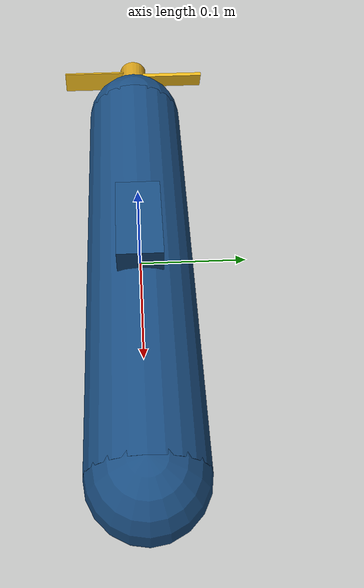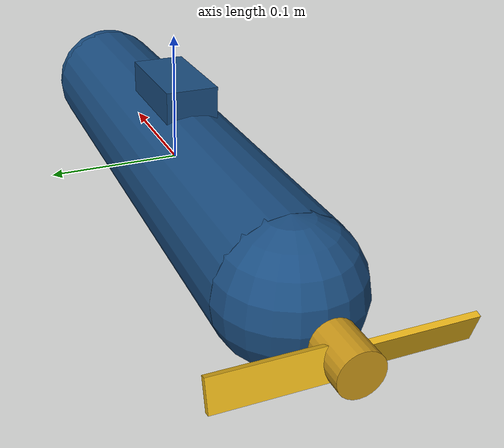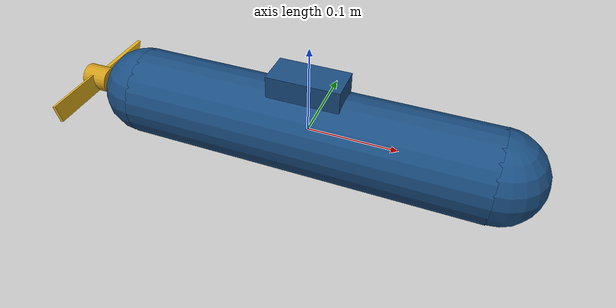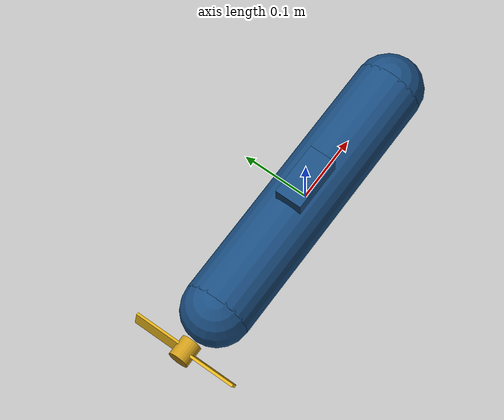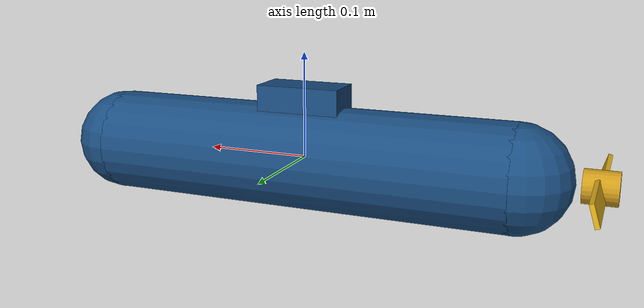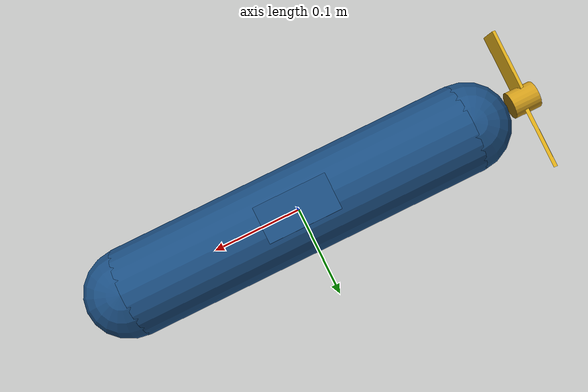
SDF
<?xml version="1.0" ?>
<sdf version="1.6">
  <world name="world">
    <model name="submarine">
      <pose>0 0 0 0 0 0</pose>

      <!-- Main hull body. A separate fixed ballast link below the hull lowers
           the overall centre of gravity while keeping the displaced volume
           unchanged. -->
      <link name="base_link">
        <pose>0 0 0 0 0 0</pose>
        <inertial>
          <pose>0 0 0 0 0 0</pose>
          <mass>1.341592653589793</mass>
          <inertia>
            <ixx>0.0016769908169872413</ixx>
            <ixy>0</ixy>
            <ixz>0</ixz>
            <iyy>0.018732647456357533</iyy>
            <iyz>0</iyz>
            <izz>0.018732647456357533</izz>
          </inertia>
        </inertial>
        <collision name="base_link_collision">
          <pose>0 0 0 0 1.5707963267948966 0</pose>
          <geometry>
            <cylinder>
              <radius>0.05</radius>
              <length>0.4</length>
            </cylinder>
          </geometry>
        </collision>
        <collision name="conning_tower_collision">
          <pose>0 0 0.05 0 0 0</pose>
          <geometry>
            <box>
              <size>0.08 0.04 0.04</size>
            </box>
          </geometry>
        </collision>
        <visual name="base_link_visual">
          <pose>0 0 0 0 1.5707963267948966 0</pose>
          <geometry>
            <cylinder>
              <radius>0.05</radius>
              <length>0.4</length>
            </cylinder>
          </geometry>
          <material>
            <ambient>0.1 0.3 0.5 1</ambient>
            <diffuse>0.1 0.3 0.5 1</diffuse>
            <specular>0.4 0.4 0.4 1</specular>
            <emissive>0 0 0 1</emissive>
          </material>
        </visual>
        <visual name="conning_tower_visual">
          <pose>0 0 0.05 0 0 0</pose>
          <geometry>
            <box>
              <size>0.08 0.04 0.04</size>
            </box>
          </geometry>
          <material>
            <ambient>0.1 0.3 0.5 1</ambient>
            <diffuse>0.1 0.3 0.5 1</diffuse>
            <specular>0.4 0.4 0.4 1</specular>
            <emissive>0 0 0 1</emissive>
          </material>
        </visual>
        <visual name="nose_visual">
          <pose>0.2 0 0 0 0 0</pose>
          <geometry>
            <sphere>
              <radius>0.05</radius>
            </sphere>
          </geometry>
          <material>
            <ambient>0.1 0.3 0.5 1</ambient>
            <diffuse>0.1 0.3 0.5 1</diffuse>
            <specular>0.4 0.4 0.4 1</specular>
            <emissive>0 0 0 1</emissive>
          </material>
        </visual>
        <visual name="tail_visual">
          <pose>-0.2 0 0 0 0 0</pose>
          <geometry>
            <sphere>
              <radius>0.05</radius>
            </sphere>
          </geometry>
          <material>
            <ambient>0.1 0.3 0.5 1</ambient>
            <diffuse>0.1 0.3 0.5 1</diffuse>
            <specular>0.4 0.4 0.4 1</specular>
            <emissive>0 0 0 1</emissive>
          </material>
        </visual>
      </link>

      <link name="ballast_keel">
        <pose>0 0 -0.09 0 0 0</pose>
        <inertial>
          <pose>0 0 0 0 0 0</pose>
          <!-- Compact ballast block, approximated as a 0.12 x 0.03 x 0.02 m
               solid box of mass 1.8 kg. -->
          <mass>1.8</mass>
          <inertia>
            <ixx>0.000195</ixx>
            <ixy>0</ixy>
            <ixz>0</ixz>
            <iyy>0.00222</iyy>
            <iyz>0</iyz>
            <izz>0.002295</izz>
          </inertia>
        </inertial>
      </link>

      <!-- Propeller hub -->
      <link name="propeller_hub">
        <pose>-0.27 0 0 0 0 0</pose>
        <inertial>
          <pose>0 0 0 0 0 0</pose>
          <mass>0.021205750411731104</mass>
          <inertia>
            <ixx>2.385646921319749e-06</ixx>
            <ixy>0</ixy>
            <ixz>0</ixz>
            <iyy>2.784321474773041e-06</iyy>
            <iyz>0</iyz>
            <izz>2.784321474773041e-06</izz>
          </inertia>
        </inertial>
        <collision name="propeller_hub_collision">
          <pose>0 0 0 0 1.5707963267948966 0</pose>
          <geometry>
            <cylinder>
              <radius>0.015</radius>
              <length>0.03</length>
            </cylinder>
          </geometry>
        </collision>
        <visual name="propeller_hub_visual">
          <pose>0 0 0 0 1.5707963267948966 0</pose>
          <geometry>
            <cylinder>
              <radius>0.015</radius>
              <length>0.03</length>
            </cylinder>
          </geometry>
          <material>
            <ambient>0.8 0.6 0.1 1</ambient>
            <diffuse>0.8 0.6 0.1 1</diffuse>
            <specular>0.4 0.4 0.4 1</specular>
            <emissive>0 0 0 1</emissive>
          </material>
        </visual>
      </link>

      <!-- Blade 0 (on +Y side, pitched +alpha around radial Y axis) -->
      <link name="blade_0">
        <pose>-0.27 0.04 0 0 0.3 0</pose>
        <inertial>
          <pose>0 0 0 0 0 0</pose>
          <mass>0.0064</mass>
          <inertia>
            <ixx>3.626666666666667e-06</ixx>
            <ixy>0</ixy>
            <ixz>0</ixz>
            <iyy>2.218666666666667e-07</iyy>
            <iyz>0</iyz>
            <izz>3.421333333333333e-06</izz>
          </inertia>
        </inertial>
        <collision name="blade_0_collision">
          <pose>0 0 0 0 0 0</pose>
          <geometry>
            <box>
              <size>0.004 0.08 0.02</size>
            </box>
          </geometry>
        </collision>
        <visual name="blade_0_visual">
          <pose>0 0 0 0 0 0</pose>
          <geometry>
            <box>
              <size>0.004 0.08 0.02</size>
            </box>
          </geometry>
          <material>
            <ambient>0.9 0.7 0.1 1</ambient>
            <diffuse>0.9 0.7 0.1 1</diffuse>
            <specular>0.4 0.4 0.4 1</specular>
            <emissive>0 0 0 1</emissive>
          </material>
        </visual>
      </link>

      <!-- Blade 1 (on -Y side, pitched -alpha so thrust adds instead of cancelling) -->
      <link name="blade_1">
        <pose>-0.27 -0.04 0 0 -0.3 0</pose>
        <inertial>
          <pose>0 0 0 0 0 0</pose>
          <mass>0.0064</mass>
          <inertia>
            <ixx>3.626666666666667e-06</ixx>
            <ixy>0</ixy>
            <ixz>0</ixz>
            <iyy>2.218666666666667e-07</iyy>
            <iyz>0</iyz>
            <izz>3.421333333333333e-06</izz>
          </inertia>
        </inertial>
        <collision name="blade_1_collision">
          <pose>0 0 0 0 0 0</pose>
          <geometry>
            <box>
              <size>0.004 0.08 0.02</size>
            </box>
          </geometry>
        </collision>
        <visual name="blade_1_visual">
          <pose>0 0 0 0 0 0</pose>
          <geometry>
            <box>
              <size>0.004 0.08 0.02</size>
            </box>
          </geometry>
          <material>
            <ambient>0.9 0.7 0.1 1</ambient>
            <diffuse>0.9 0.7 0.1 1</diffuse>
            <specular>0.4 0.4 0.4 1</specular>
            <emissive>0 0 0 1</emissive>
          </material>
        </visual>
      </link>

      <!-- Revolute joint: propeller spins about the submarine's X axis -->
      <joint name="joint_propeller" type="revolute">
        <parent>base_link</parent>
        <child>propeller_hub</child>
        <pose>0 0 0 0 0 0</pose>
        <axis>
          <xyz>1 0 0</xyz>
          <limit>
            <lower>-1e16</lower>
            <upper>1e16</upper>
          </limit>
        </axis>
      </joint>

      <joint name="joint_ballast" type="fixed">
        <parent>base_link</parent>
        <child>ballast_keel</child>
        <pose>0 0 0 0 0 0</pose>
      </joint>

      <!-- Fixed joints: rigidly attach the two blades to the hub -->
      <joint name="joint_blade_0" type="fixed">
        <parent>propeller_hub</parent>
        <child>blade_0</child>
        <pose>0 0 0 0 0 0</pose>
      </joint>
      <joint name="joint_blade_1" type="fixed">
        <parent>propeller_hub</parent>
        <child>blade_1</child>
        <pose>0 0 0 0 0 0</pose>
      </joint>
    </model>
  </world>
</sdf>
